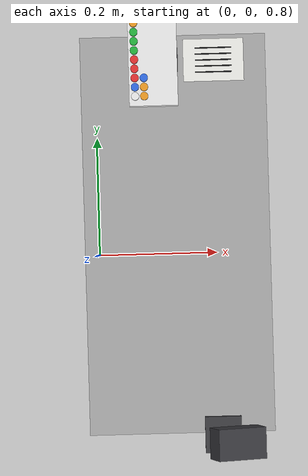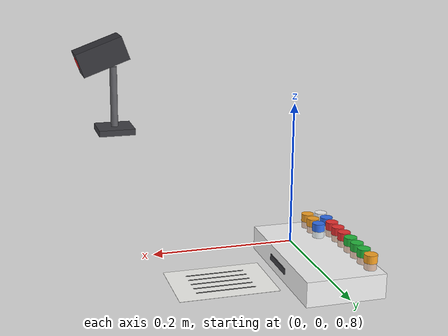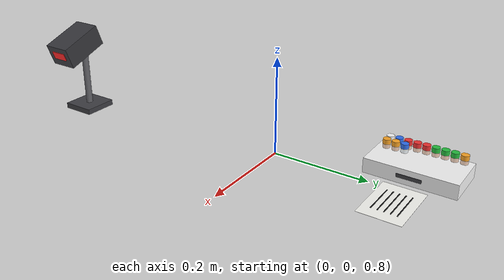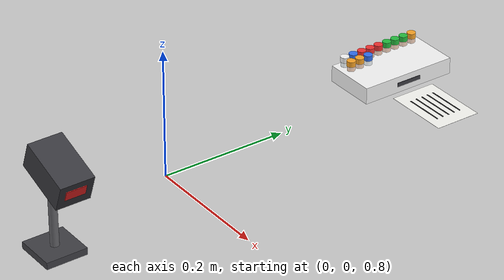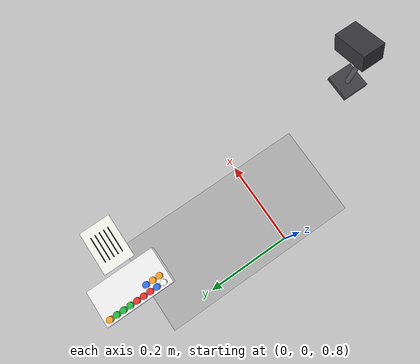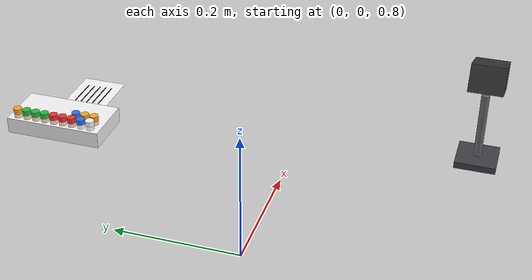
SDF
<sdf version="1.7">
 <world name="ketchup_placement_in_autosampler_cell">
  <model name="ground_plane">
   <static>true</static>
   <link name="link">
    <collision name="c"><geometry><plane><normal>0 0 1</normal><size>100 100</size></plane></geometry></collision>
    <visual name="v">
     <geometry><plane><normal>0 0 1</normal><size>100 100</size></plane></geometry>
     <material><ambient>0.60 0.60 0.60 1</ambient><diffuse>0.70 0.70 0.70 1</diffuse></material>
    </visual>
   </link>
  </model>
  <model name="source_rack">
   <static>true</static>
   <pose>0.10 0.32 0.9125 0 0 0</pose>
   <link name="link">
    <visual name="body">
     <geometry><box><size>0.080 0.150 0.025</size></box></geometry>
     <material><ambient>0.94 0.94 0.94 1</ambient><diffuse>0.98 0.98 0.98 1</diffuse></material>
    </visual>
    <collision name="c"><geometry><box><size>0.080 0.150 0.025</size></box></geometry></collision>
    <visual name="label">
     <pose>0.0405 0.000 0.000 0 0 0</pose>
     <geometry><box><size>0.001 0.040 0.006</size></box></geometry>
     <material><ambient>0.20 0.20 0.22 1</ambient><diffuse>0.25 0.25 0.27 1</diffuse></material>
    </visual>
   </link>
  </model>
  <model name="worklist_printout">
   <static>true</static>
   <pose>0.20 0.32 0.9005 0 0 0</pose>
   <link name="link">
    <visual name="paper">
     <geometry><box><size>0.100 0.070 0.0002</size></box></geometry>
     <material><ambient>0.97 0.97 0.95 1</ambient><diffuse>0.99 0.99 0.97 1</diffuse></material>
    </visual>
    <visual name="row1">
     <pose>0 0.020 0.0002 0 0 0</pose>
     <geometry><box><size>0.060 0.002 0.0001</size></box></geometry>
     <material><ambient>0.05 0.05 0.05 1</ambient><diffuse>0.10 0.10 0.10 1</diffuse></material>
    </visual>
    <visual name="row2">
     <pose>0 0.010 0.0002 0 0 0</pose>
     <geometry><box><size>0.060 0.002 0.0001</size></box></geometry>
     <material><ambient>0.05 0.05 0.05 1</ambient><diffuse>0.10 0.10 0.10 1</diffuse></material>
    </visual>
    <visual name="row3">
     <pose>0 0.000 0.0002 0 0 0</pose>
     <geometry><box><size>0.060 0.002 0.0001</size></box></geometry>
     <material><ambient>0.05 0.05 0.05 1</ambient><diffuse>0.10 0.10 0.10 1</diffuse></material>
    </visual>
    <visual name="row4">
     <pose>0 -0.010 0.0002 0 0 0</pose>
     <geometry><box><size>0.060 0.002 0.0001</size></box></geometry>
     <material><ambient>0.05 0.05 0.05 1</ambient><diffuse>0.10 0.10 0.10 1</diffuse></material>
    </visual>
    <visual name="row5">
     <pose>0 -0.020 0.0002 0 0 0</pose>
     <geometry><box><size>0.060 0.002 0.0001</size></box></geometry>
     <material><ambient>0.05 0.05 0.05 1</ambient><diffuse>0.10 0.10 0.10 1</diffuse></material>
    </visual>
   </link>
  </model>
  <model name="barcode_reader">
   <static>true</static>
   <pose>0.20 -0.30 0.900 0 0 0</pose>
   <link name="link">
    <visual name="base">
     <pose>0 0 0.005 0 0 0</pose>
     <geometry><box><size>0.060 0.060 0.010</size></box></geometry>
     <material><ambient>0.20 0.20 0.22 1</ambient><diffuse>0.25 0.25 0.27 1</diffuse></material>
    </visual>
    <collision name="base_c">
     <pose>0 0 0.005 0 0 0</pose>
     <geometry><box><size>0.060 0.060 0.010</size></box></geometry>
    </collision>
    <visual name="neck">
     <pose>0 0 0.060 0 0 0</pose>
     <geometry><cylinder><radius>0.006</radius><length>0.100</length></cylinder></geometry>
     <material><ambient>0.30 0.30 0.32 1</ambient><diffuse>0.40 0.40 0.42 1</diffuse></material>
    </visual>
    <visual name="head">
     <pose>0.020 0 0.130 0 0.35 0</pose>
     <geometry><box><size>0.080 0.050 0.040</size></box></geometry>
     <material><ambient>0.18 0.18 0.20 1</ambient><diffuse>0.22 0.22 0.24 1</diffuse></material>
    </visual>
    <visual name="head_window">
     <pose>0.058 0 0.118 0 0.35 0</pose>
     <geometry><box><size>0.002 0.030 0.015</size></box></geometry>
     <material>
      <ambient>0.80 0.10 0.10 1</ambient>
      <diffuse>0.95 0.15 0.15 1</diffuse>
      <emissive>0.45 0.05 0.05 1</emissive>
     </material>
    </visual>
   </link>
  </model>
  <model name="vial_pos1_blank">
   <pose>0.070 0.260 0.916 0 0 0</pose>
   <link name="link">
    <inertial>
     <mass>0.008</mass>
     <inertia><ixx>1e-6</ixx><iyy>1e-6</iyy><izz>4e-7</izz><ixy>0</ixy><ixz>0</ixz><iyz>0</iyz></inertia>
    </inertial>
    <visual name="body">
     <geometry><cylinder><radius>0.006</radius><length>0.032</length></cylinder></geometry>
     <material><ambient>0.85 0.90 0.92 0.55</ambient><diffuse>0.85 0.90 0.92 0.55</diffuse></material>
    </visual>
    <visual name="cap">
     <pose>0 0 0.020 0 0 0</pose>
     <geometry><cylinder><radius>0.0065</radius><length>0.008</length></cylinder></geometry>
     <material><ambient>0.98 0.98 0.98 1</ambient><diffuse>0.99 0.99 0.99 1</diffuse></material>
    </visual>
    <visual name="label_band">
     <pose>0 0 -0.008 0 0 0</pose>
     <geometry><cylinder><radius>0.00605</radius><length>0.004</length></cylinder></geometry>
     <material><ambient>0.97 0.97 0.95 1</ambient><diffuse>0.99 0.99 0.97 1</diffuse></material>
    </visual>
    <collision name="c">
     <geometry><cylinder><radius>0.006</radius><length>0.032</length></cylinder></geometry>
    </collision>
   </link>
  </model>
  <model name="vial_pos2_standard">
   <pose>0.070 0.275 0.916 0 0 0</pose>
   <link name="link">
    <inertial>
     <mass>0.008</mass>
     <inertia><ixx>1e-6</ixx><iyy>1e-6</iyy><izz>4e-7</izz><ixy>0</ixy><ixz>0</ixz><iyz>0</iyz></inertia>
    </inertial>
    <visual name="body">
     <geometry><cylinder><radius>0.006</radius><length>0.032</length></cylinder></geometry>
     <material><ambient>0.85 0.90 0.92 0.55</ambient><diffuse>0.85 0.90 0.92 0.55</diffuse></material>
    </visual>
    <visual name="cap">
     <pose>0 0 0.020 0 0 0</pose>
     <geometry><cylinder><radius>0.0065</radius><length>0.008</length></cylinder></geometry>
     <material><ambient>0.15 0.35 0.85 1</ambient><diffuse>0.20 0.45 0.95 1</diffuse></material>
    </visual>
    <visual name="label_band">
     <pose>0 0 -0.008 0 0 0</pose>
     <geometry><cylinder><radius>0.00605</radius><length>0.004</length></cylinder></geometry>
     <material><ambient>0.20 0.40 0.85 1</ambient><diffuse>0.25 0.50 0.95 1</diffuse></material>
    </visual>
    <collision name="c">
     <geometry><cylinder><radius>0.006</radius><length>0.032</length></cylinder></geometry>
    </collision>
   </link>
  </model>
  <model name="vial_pos3_A_r1">
   <pose>0.070 0.290 0.916 0 0 0</pose>
   <link name="link">
    <inertial>
     <mass>0.008</mass>
     <inertia><ixx>1e-6</ixx><iyy>1e-6</iyy><izz>4e-7</izz><ixy>0</ixy><ixz>0</ixz><iyz>0</iyz></inertia>
    </inertial>
    <visual name="body">
     <geometry><cylinder><radius>0.006</radius><length>0.032</length></cylinder></geometry>
     <material><ambient>0.78 0.55 0.45 0.60</ambient><diffuse>0.88 0.65 0.50 0.60</diffuse></material>
    </visual>
    <visual name="cap">
     <pose>0 0 0.020 0 0 0</pose>
     <geometry><cylinder><radius>0.0065</radius><length>0.008</length></cylinder></geometry>
     <material><ambient>0.85 0.15 0.15 1</ambient><diffuse>0.95 0.20 0.20 1</diffuse></material>
    </visual>
    <visual name="label_band">
     <pose>0 0 -0.008 0 0 0</pose>
     <geometry><cylinder><radius>0.00605</radius><length>0.004</length></cylinder></geometry>
     <material><ambient>0.85 0.20 0.20 1</ambient><diffuse>0.95 0.25 0.25 1</diffuse></material>
    </visual>
    <collision name="c">
     <geometry><cylinder><radius>0.006</radius><length>0.032</length></cylinder></geometry>
    </collision>
   </link>
  </model>
  <model name="vial_pos4_A_r2">
   <pose>0.070 0.305 0.916 0 0 0</pose>
   <link name="link">
    <inertial>
     <mass>0.008</mass>
     <inertia><ixx>1e-6</ixx><iyy>1e-6</iyy><izz>4e-7</izz><ixy>0</ixy><ixz>0</ixz><iyz>0</iyz></inertia>
    </inertial>
    <visual name="body">
     <geometry><cylinder><radius>0.006</radius><length>0.032</length></cylinder></geometry>
     <material><ambient>0.78 0.55 0.45 0.60</ambient><diffuse>0.88 0.65 0.50 0.60</diffuse></material>
    </visual>
    <visual name="cap">
     <pose>0 0 0.020 0 0 0</pose>
     <geometry><cylinder><radius>0.0065</radius><length>0.008</length></cylinder></geometry>
     <material><ambient>0.85 0.15 0.15 1</ambient><diffuse>0.95 0.20 0.20 1</diffuse></material>
    </visual>
    <visual name="label_band">
     <pose>0 0 -0.008 0 0 0</pose>
     <geometry><cylinder><radius>0.00605</radius><length>0.004</length></cylinder></geometry>
     <material><ambient>0.85 0.20 0.20 1</ambient><diffuse>0.95 0.25 0.25 1</diffuse></material>
    </visual>
    <collision name="c">
     <geometry><cylinder><radius>0.006</radius><length>0.032</length></cylinder></geometry>
    </collision>
   </link>
  </model>
  <model name="vial_pos5_A_r3">
   <pose>0.070 0.320 0.916 0 0 0</pose>
   <link name="link">
    <inertial>
     <mass>0.008</mass>
     <inertia><ixx>1e-6</ixx><iyy>1e-6</iyy><izz>4e-7</izz><ixy>0</ixy><ixz>0</ixz><iyz>0</iyz></inertia>
    </inertial>
    <visual name="body">
     <geometry><cylinder><radius>0.006</radius><length>0.032</length></cylinder></geometry>
     <material><ambient>0.78 0.55 0.45 0.60</ambient><diffuse>0.88 0.65 0.50 0.60</diffuse></material>
    </visual>
    <visual name="cap">
     <pose>0 0 0.020 0 0 0</pose>
     <geometry><cylinder><radius>0.0065</radius><length>0.008</length></cylinder></geometry>
     <material><ambient>0.85 0.15 0.15 1</ambient><diffuse>0.95 0.20 0.20 1</diffuse></material>
    </visual>
    <visual name="label_band">
     <pose>0 0 -0.008 0 0 0</pose>
     <geometry><cylinder><radius>0.00605</radius><length>0.004</length></cylinder></geometry>
     <material><ambient>0.85 0.20 0.20 1</ambient><diffuse>0.95 0.25 0.25 1</diffuse></material>
    </visual>
    <collision name="c">
     <geometry><cylinder><radius>0.006</radius><length>0.032</length></cylinder></geometry>
    </collision>
   </link>
  </model>
  <model name="vial_pos6_B_r1">
   <pose>0.070 0.335 0.916 0 0 0</pose>
   <link name="link">
    <inertial>
     <mass>0.008</mass>
     <inertia><ixx>1e-6</ixx><iyy>1e-6</iyy><izz>4e-7</izz><ixy>0</ixy><ixz>0</ixz><iyz>0</iyz></inertia>
    </inertial>
    <visual name="body">
     <geometry><cylinder><radius>0.006</radius><length>0.032</length></cylinder></geometry>
     <material><ambient>0.78 0.55 0.45 0.60</ambient><diffuse>0.88 0.65 0.50 0.60</diffuse></material>
    </visual>
    <visual name="cap">
     <pose>0 0 0.020 0 0 0</pose>
     <geometry><cylinder><radius>0.0065</radius><length>0.008</length></cylinder></geometry>
     <material><ambient>0.10 0.60 0.20 1</ambient><diffuse>0.15 0.75 0.25 1</diffuse></material>
    </visual>
    <visual name="label_band">
     <pose>0 0 -0.008 0 0 0</pose>
     <geometry><cylinder><radius>0.00605</radius><length>0.004</length></cylinder></geometry>
     <material><ambient>0.15 0.65 0.25 1</ambient><diffuse>0.20 0.78 0.30 1</diffuse></material>
    </visual>
    <collision name="c">
     <geometry><cylinder><radius>0.006</radius><length>0.032</length></cylinder></geometry>
    </collision>
   </link>
  </model>
  <model name="vial_pos7_B_r2">
   <pose>0.070 0.350 0.916 0 0 0</pose>
   <link name="link">
    <inertial>
     <mass>0.008</mass>
     <inertia><ixx>1e-6</ixx><iyy>1e-6</iyy><izz>4e-7</izz><ixy>0</ixy><ixz>0</ixz><iyz>0</iyz></inertia>
    </inertial>
    <visual name="body">
     <geometry><cylinder><radius>0.006</radius><length>0.032</length></cylinder></geometry>
     <material><ambient>0.78 0.55 0.45 0.60</ambient><diffuse>0.88 0.65 0.50 0.60</diffuse></material>
    </visual>
    <visual name="cap">
     <pose>0 0 0.020 0 0 0</pose>
     <geometry><cylinder><radius>0.0065</radius><length>0.008</length></cylinder></geometry>
     <material><ambient>0.10 0.60 0.20 1</ambient><diffuse>0.15 0.75 0.25 1</diffuse></material>
    </visual>
    <visual name="label_band">
     <pose>0 0 -0.008 0 0 0</pose>
     <geometry><cylinder><radius>0.00605</radius><length>0.004</length></cylinder></geometry>
     <material><ambient>0.15 0.65 0.25 1</ambient><diffuse>0.20 0.78 0.30 1</diffuse></material>
    </visual>
    <collision name="c">
     <geometry><cylinder><radius>0.006</radius><length>0.032</length></cylinder></geometry>
    </collision>
   </link>
  </model>
  <model name="vial_pos8_B_r3">
   <pose>0.070 0.365 0.916 0 0 0</pose>
   <link name="link">
    <inertial>
     <mass>0.008</mass>
     <inertia><ixx>1e-6</ixx><iyy>1e-6</iyy><izz>4e-7</izz><ixy>0</ixy><ixz>0</ixz><iyz>0</iyz></inertia>
    </inertial>
    <visual name="body">
     <geometry><cylinder><radius>0.006</radius><length>0.032</length></cylinder></geometry>
     <material><ambient>0.78 0.55 0.45 0.60</ambient><diffuse>0.88 0.65 0.50 0.60</diffuse></material>
    </visual>
    <visual name="cap">
     <pose>0 0 0.020 0 0 0</pose>
     <geometry><cylinder><radius>0.0065</radius><length>0.008</length></cylinder></geometry>
     <material><ambient>0.10 0.60 0.20 1</ambient><diffuse>0.15 0.75 0.25 1</diffuse></material>
    </visual>
    <visual name="label_band">
     <pose>0 0 -0.008 0 0 0</pose>
     <geometry><cylinder><radius>0.00605</radius><length>0.004</length></cylinder></geometry>
     <material><ambient>0.15 0.65 0.25 1</ambient><diffuse>0.20 0.78 0.30 1</diffuse></material>
    </visual>
    <collision name="c">
     <geometry><cylinder><radius>0.006</radius><length>0.032</length></cylinder></geometry>
    </collision>
   </link>
  </model>
  <model name="vial_pos9_C_r1">
   <pose>0.070 0.380 0.916 0 0 0</pose>
   <link name="link">
    <inertial>
     <mass>0.008</mass>
     <inertia><ixx>1e-6</ixx><iyy>1e-6</iyy><izz>4e-7</izz><ixy>0</ixy><ixz>0</ixz><iyz>0</iyz></inertia>
    </inertial>
    <visual name="body">
     <geometry><cylinder><radius>0.006</radius><length>0.032</length></cylinder></geometry>
     <material><ambient>0.78 0.55 0.45 0.60</ambient><diffuse>0.88 0.65 0.50 0.60</diffuse></material>
    </visual>
    <visual name="cap">
     <pose>0 0 0.020 0 0 0</pose>
     <geometry><cylinder><radius>0.0065</radius><length>0.008</length></cylinder></geometry>
     <material><ambient>0.95 0.55 0.10 1</ambient><diffuse>0.99 0.65 0.15 1</diffuse></material>
    </visual>
    <visual name="label_band">
     <pose>0 0 -0.008 0 0 0</pose>
     <geometry><cylinder><radius>0.00605</radius><length>0.004</length></cylinder></geometry>
     <material><ambient>0.95 0.55 0.10 1</ambient><diffuse>0.99 0.65 0.15 1</diffuse></material>
    </visual>
    <collision name="c">
     <geometry><cylinder><radius>0.006</radius><length>0.032</length></cylinder></geometry>
    </collision>
   </link>
  </model>
  <model name="vial_pos10_C_r2">
   <pose>0.085 0.260 0.916 0 0 0</pose>
   <link name="link">
    <inertial>
     <mass>0.008</mass>
     <inertia><ixx>1e-6</ixx><iyy>1e-6</iyy><izz>4e-7</izz><ixy>0</ixy><ixz>0</ixz><iyz>0</iyz></inertia>
    </inertial>
    <visual name="body">
     <geometry><cylinder><radius>0.006</radius><length>0.032</length></cylinder></geometry>
     <material><ambient>0.78 0.55 0.45 0.60</ambient><diffuse>0.88 0.65 0.50 0.60</diffuse></material>
    </visual>
    <visual name="cap">
     <pose>0 0 0.020 0 0 0</pose>
     <geometry><cylinder><radius>0.0065</radius><length>0.008</length></cylinder></geometry>
     <material><ambient>0.95 0.55 0.10 1</ambient><diffuse>0.99 0.65 0.15 1</diffuse></material>
    </visual>
    <visual name="label_band">
     <pose>0 0 -0.008 0 0 0</pose>
     <geometry><cylinder><radius>0.00605</radius><length>0.004</length></cylinder></geometry>
     <material><ambient>0.95 0.55 0.10 1</ambient><diffuse>0.99 0.65 0.15 1</diffuse></material>
    </visual>
    <collision name="c">
     <geometry><cylinder><radius>0.006</radius><length>0.032</length></cylinder></geometry>
    </collision>
   </link>
  </model>
  <model name="vial_pos11_C_r3">
   <pose>0.085 0.275 0.916 0 0 0</pose>
   <link name="link">
    <inertial>
     <mass>0.008</mass>
     <inertia><ixx>1e-6</ixx><iyy>1e-6</iyy><izz>4e-7</izz><ixy>0</ixy><ixz>0</ixz><iyz>0</iyz></inertia>
    </inertial>
    <visual name="body">
     <geometry><cylinder><radius>0.006</radius><length>0.032</length></cylinder></geometry>
     <material><ambient>0.78 0.55 0.45 0.60</ambient><diffuse>0.88 0.65 0.50 0.60</diffuse></material>
    </visual>
    <visual name="cap">
     <pose>0 0 0.020 0 0 0</pose>
     <geometry><cylinder><radius>0.0065</radius><length>0.008</length></cylinder></geometry>
     <material><ambient>0.95 0.55 0.10 1</ambient><diffuse>0.99 0.65 0.15 1</diffuse></material>
    </visual>
    <visual name="label_band">
     <pose>0 0 -0.008 0 0 0</pose>
     <geometry><cylinder><radius>0.00605</radius><length>0.004</length></cylinder></geometry>
     <material><ambient>0.95 0.55 0.10 1</ambient><diffuse>0.99 0.65 0.15 1</diffuse></material>
    </visual>
    <collision name="c">
     <geometry><cylinder><radius>0.006</radius><length>0.032</length></cylinder></geometry>
    </collision>
   </link>
  </model>
  <model name="vial_pos12_standard_drift">
   <pose>0.085 0.290 0.916 0 0 0</pose>
   <link name="link">
    <inertial>
     <mass>0.008</mass>
     <inertia><ixx>1e-6</ixx><iyy>1e-6</iyy><izz>4e-7</izz><ixy>0</ixy><ixz>0</ixz><iyz>0</iyz></inertia>
    </inertial>
    <visual name="body">
     <geometry><cylinder><radius>0.006</radius><length>0.032</length></cylinder></geometry>
     <material><ambient>0.85 0.90 0.92 0.55</ambient><diffuse>0.85 0.90 0.92 0.55</diffuse></material>
    </visual>
    <visual name="cap">
     <pose>0 0 0.020 0 0 0</pose>
     <geometry><cylinder><radius>0.0065</radius><length>0.008</length></cylinder></geometry>
     <material><ambient>0.15 0.35 0.85 1</ambient><diffuse>0.20 0.45 0.95 1</diffuse></material>
    </visual>
    <visual name="label_band">
     <pose>0 0 -0.008 0 0 0</pose>
     <geometry><cylinder><radius>0.00605</radius><length>0.004</length></cylinder></geometry>
     <material><ambient>0.20 0.40 0.85 1</ambient><diffuse>0.25 0.50 0.95 1</diffuse></material>
    </visual>
    <collision name="c">
     <geometry><cylinder><radius>0.006</radius><length>0.032</length></cylinder></geometry>
    </collision>
   </link>
  </model>
 </world>
</sdf>
